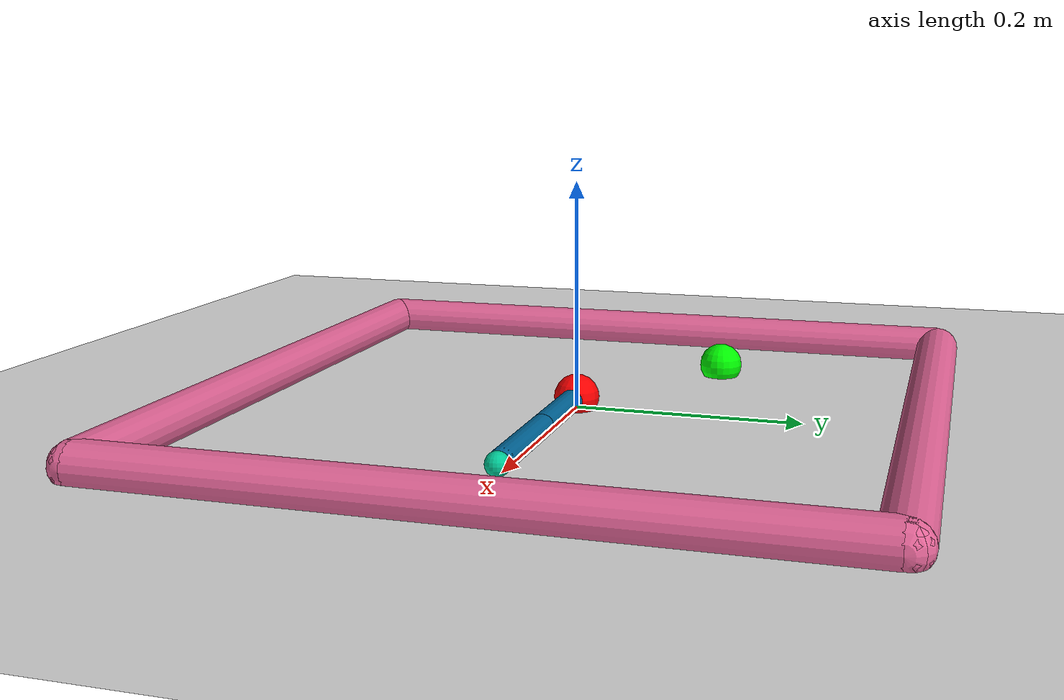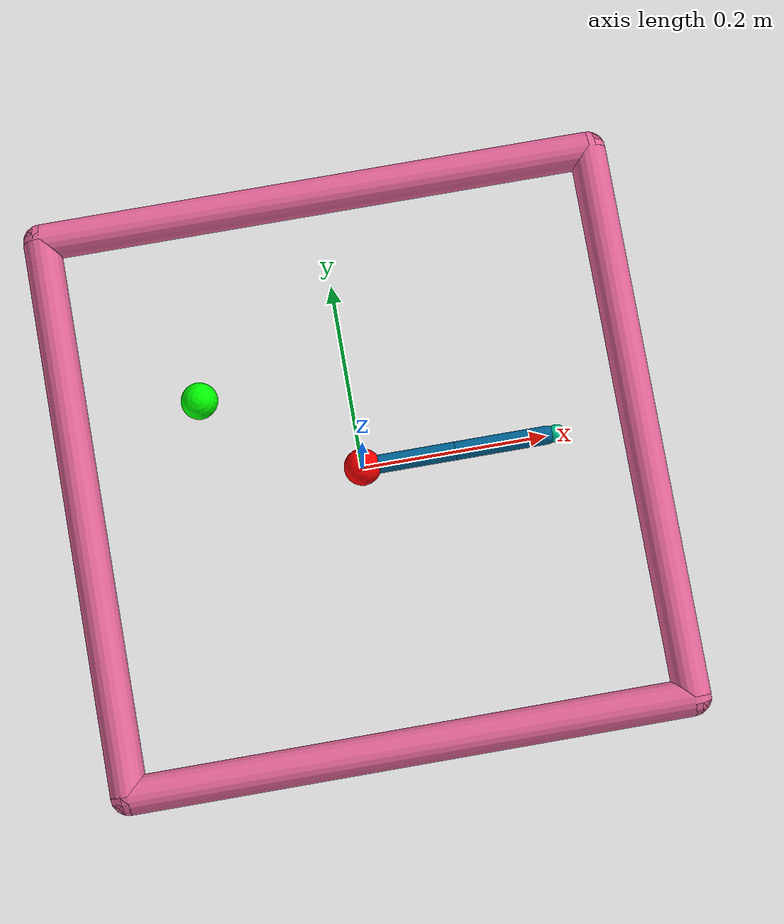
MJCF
<mujoco model="reacher">
  <compiler angle="radian" inertiafromgeom="true"/>
  <default>
    <joint armature="1" damping="1" limited="true"/>
    <geom contype="0" friction="1 0.1 0.1" rgba="0.7 0.7 0 1"/>
  </default>
  <option gravity="0 0 -9.81" integrator="RK4" timestep="0.01"/>
  <worldbody>
    <!-- Arena -->
    <geom type="plane" size="1 1 10" rgba="0.9 0.9 0.9 1" pos="0 0 0"/>
    <geom fromto="-.3 -.3 .01 .3 -.3 .01" name="sideS" rgba="0.9 0.4 0.6 1" size=".02" type="capsule"/>
    <geom fromto=" .3 -.3 .01 .3  .3 .01" name="sideE" rgba="0.9 0.4 0.6 1" size=".02" type="capsule"/>
    <geom fromto="-.3  .3 .01 .3  .3 .01" name="sideN" rgba="0.9 0.4 0.6 1" size=".02" type="capsule"/>
    <geom fromto="-.3 -.3 .01 -.3 .3 .01" name="sideW" rgba="0.9 0.4 0.6 1" size=".02" type="capsule"/>

    <!-- Arm -->
    <geom fromto="0 0 0 0 0 0.02" name="root" rgba="0.9 0.4 0.6 1" size=".011" type="cylinder"/>
    <body name="body0" pos="0 0 0.01">
      <geom fromto="0 0 0 0.1 0 0" name="link0" rgba="0.0 0.4 0.6 1" size=".01" type="capsule"/>
      <joint name="joint0" type="hinge" axis="0 0 1" pos="0 0 0" limited="false"/>
      <body name="body1" pos="0.1 0 0">
        <joint name="joint1" type="hinge" axis="0 0 1" pos="0 0 0" range="-3.0 3.0" limited="true"/>
        <geom fromto="0 0 0 0.1 0 0" name="link1" rgba="0.0 0.4 0.6 1" size=".01" type="capsule"/>
        <body name="fingertip" pos="0.11 0 0">
          <geom name="fingertip_geom" type="sphere" pos="0 0 0" size=".01" rgba="0.0 0.8 0.6 1" contype="0"/>
          <site name="fingertip" pos="0 0 0" size="0.005" rgba="0 1 0 1"/>
        </body>
      </body>
    </body>

    <!-- Movable Red Ball Object -->
    <body name="object_body" pos="0 0 0.01">
      <joint name="target1_x" type="slide" axis="1 0 0" pos="0 0 0" range="-0.13 0.13"/>
      <joint name="target1_y" type="slide" axis="0 1 0" pos="0 0 0" range="-0.13 0.13"/>
      <geom name="object_geom" type="sphere" pos="0 0 0" size="0.02" mass="0.00001" rgba="1 0 0 1" contype="1"/>
      <site name="target1_site" pos="0 0 0" size="0.005" rgba="1 0 0 1"/>
    </body>

    <body name="target_body" pos="-0.16 0.1 0.01">
      <joint name="target2_x" type="slide" axis="1 0 0" pos="0 0 0" range="-0.27 0.27"/>
      <joint name="target2_y" type="slide" axis="0 1 0" pos="0 0 0" range="-0.27 0.27"/>
      <geom name="target_geom" type="sphere" pos="0 0 0" size="0.02" mass="0.00001" rgba="0 1 0 1" contype="0"/>
      <site name="target2_site" pos="0 0 0" size="0.005" rgba="0 1 0 1"/>
    </body>

  </worldbody>

  <actuator>
    <motor joint="joint0" ctrllimited="true" ctrlrange="-1.0 1.0" gear="200.0"/>
    <motor joint="joint1" ctrllimited="true" ctrlrange="-1.0 1.0" gear="200.0"/>
  </actuator>
</mujoco>
